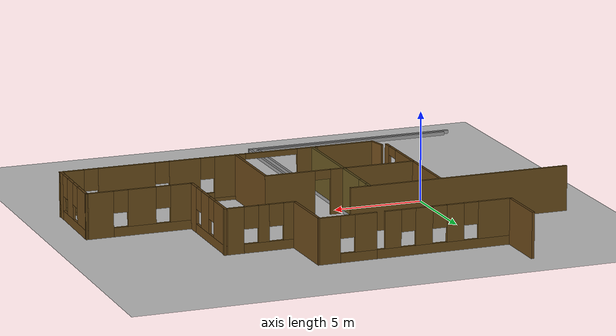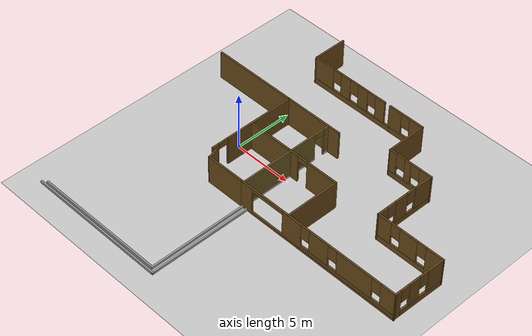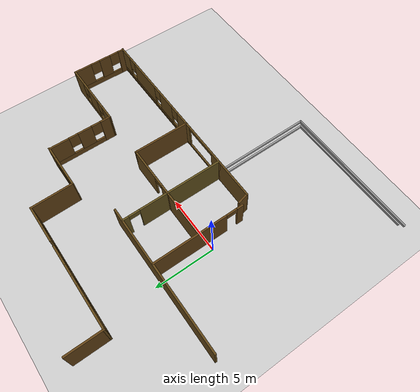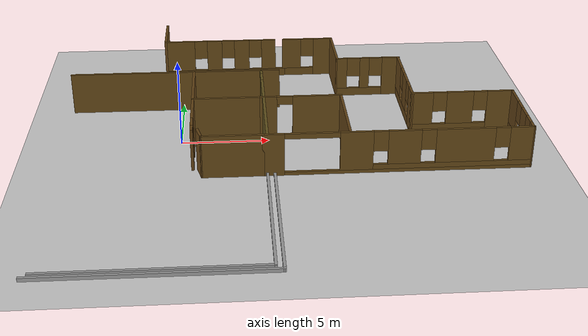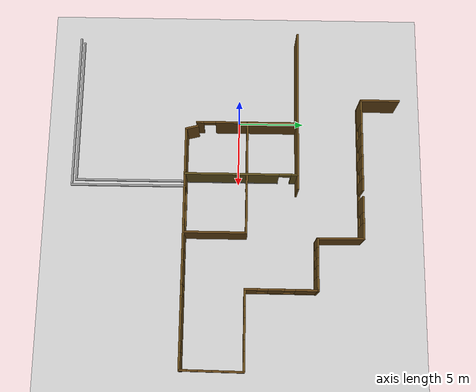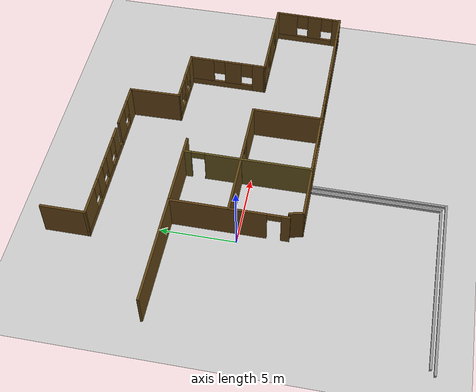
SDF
<sdf version="1.6">
 <world name="default">
  <model name="ground_plane">
   <static>1</static>
   <link name="link">
    <collision name="collision">
     <geometry><plane><normal>0 0 1</normal><size>100 100</size></plane></geometry>
     <surface>
      <contact><collide_bitmask>65535</collide_bitmask></contact>
      <friction><ode><mu>100</mu><mu2>50</mu2></ode></friction>
     </surface>
    </collision>
    <visual name="visual">
     <cast_shadows>0</cast_shadows>
     <geometry><plane><normal>0 0 1</normal><size>100 100</size></plane></geometry>
     <material>
      <script><uri>file://media/materials/scripts/gazebo.material</uri><name>Gazebo/Grey</name></script>
     </material>
    </visual>
   </link>
  </model>
  <model name="BuildMyWorld">
   <pose>-3.99019 0.78378 0 0 -0 0</pose>
   <link name="Wall_100">
    <collision name="Wall_100_Collision">
     <geometry><box><size>12.25 0.15 0.2</size></box></geometry>
     <pose>0 0 0.1 0 -0 0</pose>
    </collision>
    <visual name="Wall_100_Visual">
     <pose>0 0 0.1 0 -0 0</pose>
     <geometry><box><size>12.25 0.15 0.2</size></box></geometry>
     <material>
      <script><uri>file://media/materials/scripts/gazebo.material</uri><name>Gazebo/Grey</name></script>
      <ambient>1 1 1 1</ambient>
     </material>
     <meta><layer>0</layer></meta>
    </visual>
    <pose>3.08619 -13.6873 0 0 0 -0.002893</pose>
   </link>
   <link name="Wall_101">
    <collision name="Wall_101_Collision">
     <geometry><box><size>8.965 0.15 0.2</size></box></geometry>
     <pose>0 0 0.1 0 -0 0</pose>
    </collision>
    <visual name="Wall_101_Visual">
     <pose>0 0 0.1 0 -0 0</pose>
     <geometry><box><size>8.965 0.15 0.2</size></box></geometry>
     <material>
      <script><uri>file://media/materials/scripts/gazebo.material</uri><name>Gazebo/Grey</name></script>
      <ambient>1 1 1 1</ambient>
     </material>
     <meta><layer>0</layer></meta>
    </visual>
    <pose>9.13619 -9.29728 0 0 -0 1.5708</pose>
   </link>
   <link name="Wall_51">
    <collision name="Wall_51_Collision">
     <geometry><box><size>11.5 0.15 0.2</size></box></geometry>
     <pose>0 0 0.1 0 -0 0</pose>
    </collision>
    <visual name="Wall_51_Visual">
     <pose>0 0 0.1 0 -0 0</pose>
     <geometry><box><size>11.5 0.15 0.2</size></box></geometry>
     <material>
      <script><uri>file://media/materials/scripts/gazebo.material</uri><name>Gazebo/Grey</name></script>
      <ambient>1 1 1 1</ambient>
     </material>
     <meta><layer>0</layer></meta>
    </visual>
    <pose>3.06419 -13.3858 0 0 -0 0</pose>
   </link>
   <link name="Wall_52">
    <pose>8.73919 -4.86228 0 0 -0 1.5708</pose>
    <visual name="Wall_52_Visual_0">
     <pose>-0.730883 0 0.1 0 -0 0</pose>
     <geometry><box><size>15.7353 0.15 0.2</size></box></geometry>
     <material>
      <script><uri>file://media/materials/scripts/gazebo.material</uri><name>Gazebo/Grey</name></script>
      <ambient>1 1 1 1</ambient>
     </material>
     <meta><layer>0</layer></meta>
    </visual>
    <collision name="Wall_52_Collision_0">
     <geometry><box><size>15.7353 0.15 0.2</size></box></geometry>
     <pose>-0.730883 0 0.1 0 -0 0</pose>
    </collision>
    <visual name="Wall_52_Visual_1">
     <pose>8.31765 0 0.1 0 -0 0</pose>
     <geometry><box><size>0.561765 0.15 0.2</size></box></geometry>
     <material>
      <script><uri>file://media/materials/scripts/gazebo.material</uri><name>Gazebo/Grey</name></script>
      <ambient>1 1 1 1</ambient>
     </material>
     <meta><layer>0</layer></meta>
    </visual>
    <collision name="Wall_52_Collision_1">
     <geometry><box><size>0.561765 0.15 0.2</size></box></geometry>
     <pose>8.31765 0 0.1 0 -0 0</pose>
    </collision>
   </link>
   <link name="Wall_55">
    <collision name="Wall_55_Collision">
     <geometry><box><size>1.02553 0.15 2.5</size></box></geometry>
     <pose>0 0 1.25 0 -0 0</pose>
    </collision>
    <visual name="Wall_55_Visual">
     <pose>0 0 1.25 0 -0 0</pose>
     <geometry><box><size>1.02553 0.15 2.5</size></box></geometry>
     <material>
      <script><uri>file://media/materials/scripts/gazebo.material</uri><name>Gazebo/Grey</name></script>
      <ambient>0.384314 0.258824 0.0823529 1</ambient>
     </material>
     <meta><layer>0</layer></meta>
    </visual>
    <pose>5.11981 -4.37063 0 0 0 -1.32872</pose>
   </link>
   <link name="Wall_56">
    <collision name="Wall_56_Collision">
     <geometry><box><size>3.43004 0.15 2.5</size></box></geometry>
     <pose>0 0 1.25 0 -0 0</pose>
    </collision>
    <visual name="Wall_56_Visual">
     <pose>0 0 1.25 0 -0 0</pose>
     <geometry><box><size>3.43004 0.15 2.5</size></box></geometry>
     <material>
      <script><uri>file://media/materials/scripts/gazebo.material</uri><name>Gazebo/Grey</name></script>
      <ambient>0.384314 0.27451 0.0862745 1</ambient>
     </material>
     <meta><layer>0</layer></meta>
    </visual>
    <pose>6.86477 -4.79563 0 0 -0 0</pose>
   </link>
   <link name="Wall_58">
    <pose>15.8398 -4.79563 0 0 -0 0</pose>
    <visual name="Wall_58_Visual_0">
     <pose>-6.78269 0 1.25 0 -0 0</pose>
     <geometry><box><size>1.18462 0.15 2.5</size></box></geometry>
     <material>
      <script><uri>file://media/materials/scripts/gazebo.material</uri><name>Gazebo/Grey</name></script>
      <ambient>0.384314 0.27451 0.0862745 1</ambient>
     </material>
     <meta><layer>0</layer></meta>
    </visual>
    <collision name="Wall_58_Collision_0">
     <geometry><box><size>1.18462 0.15 2.5</size></box></geometry>
     <pose>-6.78269 0 1.25 0 -0 0</pose>
    </collision>
    <visual name="Wall_58_Visual_1">
     <pose>0.592308 0 0.1 0 -0 0</pose>
     <geometry><box><size>13.5654 0.15 0.2</size></box></geometry>
     <material>
      <script><uri>file://media/materials/scripts/gazebo.material</uri><name>Gazebo/Grey</name></script>
      <ambient>0.384314 0.27451 0.0862745 1</ambient>
     </material>
     <meta><layer>0</layer></meta>
    </visual>
    <collision name="Wall_58_Collision_1">
     <geometry><box><size>13.5654 0.15 0.2</size></box></geometry>
     <pose>0.592308 0 0.1 0 -0 0</pose>
    </collision>
    <visual name="Wall_58_Visual_2">
     <pose>-2.29175 0 1.35 0 -0 0</pose>
     <geometry><box><size>1.79726 0.15 2.3</size></box></geometry>
     <material>
      <script><uri>file://media/materials/scripts/gazebo.material</uri><name>Gazebo/Grey</name></script>
      <ambient>0.384314 0.27451 0.0862745 1</ambient>
     </material>
     <meta><layer>0</layer></meta>
    </visual>
    <collision name="Wall_58_Collision_2">
     <geometry><box><size>1.79726 0.15 2.3</size></box></geometry>
     <pose>-2.29175 0 1.35 0 -0 0</pose>
    </collision>
    <visual name="Wall_58_Visual_3">
     <pose>2.99094 0 0.35 0 -0 0</pose>
     <geometry><box><size>8.76812 0.15 0.3</size></box></geometry>
     <material>
      <script><uri>file://media/materials/scripts/gazebo.material</uri><name>Gazebo/Grey</name></script>
      <ambient>0.384314 0.27451 0.0862745 1</ambient>
     </material>
     <meta><layer>0</layer></meta>
    </visual>
    <collision name="Wall_58_Collision_3">
     <geometry><box><size>8.76812 0.15 0.3</size></box></geometry>
     <pose>2.99094 0 0.35 0 -0 0</pose>
    </collision>
    <visual name="Wall_58_Visual_4">
     <pose>0.302195 0 1.5 0 -0 0</pose>
     <geometry><box><size>1.79063 0.15 2</size></box></geometry>
     <material>
      <script><uri>file://media/materials/scripts/gazebo.material</uri><name>Gazebo/Grey</name></script>
      <ambient>0.384314 0.27451 0.0862745 1</ambient>
     </material>
     <meta><layer>0</layer></meta>
    </visual>
    <collision name="Wall_58_Collision_4">
     <geometry><box><size>1.79063 0.15 2</size></box></geometry>
     <pose>0.302195 0 1.5 0 -0 0</pose>
    </collision>
    <visual name="Wall_58_Visual_5">
     <pose>3.60987 0 1.5 0 -0 0</pose>
     <geometry><box><size>3.22473 0.15 2</size></box></geometry>
     <material>
      <script><uri>file://media/materials/scripts/gazebo.material</uri><name>Gazebo/Grey</name></script>
      <ambient>0.384314 0.27451 0.0862745 1</ambient>
     </material>
     <meta><layer>0</layer></meta>
    </visual>
    <collision name="Wall_58_Collision_5">
     <geometry><box><size>3.22473 0.15 2</size></box></geometry>
     <pose>3.60987 0 1.5 0 -0 0</pose>
    </collision>
    <visual name="Wall_58_Visual_6">
     <pose>6.69862 0 1.5 0 -0 0</pose>
     <geometry><box><size>1.35277 0.15 2</size></box></geometry>
     <material>
      <script><uri>file://media/materials/scripts/gazebo.material</uri><name>Gazebo/Grey</name></script>
      <ambient>0.384314 0.27451 0.0862745 1</ambient>
     </material>
     <meta><layer>0</layer></meta>
    </visual>
    <collision name="Wall_58_Collision_6">
     <geometry><box><size>1.35277 0.15 2</size></box></geometry>
     <pose>6.69862 0 1.5 0 -0 0</pose>
    </collision>
    <visual name="Wall_58_Visual_7">
     <pose>-0.993119 0 1.9 0 -0 0</pose>
     <geometry><box><size>0.8 0.15 1.2</size></box></geometry>
     <material>
      <script><uri>file://media/materials/scripts/gazebo.material</uri><name>Gazebo/Grey</name></script>
      <ambient>0.384314 0.27451 0.0862745 1</ambient>
     </material>
     <meta><layer>0</layer></meta>
    </visual>
    <collision name="Wall_58_Collision_7">
     <geometry><box><size>0.8 0.15 1.2</size></box></geometry>
     <pose>-0.993119 0 1.9 0 -0 0</pose>
    </collision>
    <visual name="Wall_58_Visual_8">
     <pose>1.59751 0 1.9 0 -0 0</pose>
     <geometry><box><size>0.8 0.15 1.2</size></box></geometry>
     <material>
      <script><uri>file://media/materials/scripts/gazebo.material</uri><name>Gazebo/Grey</name></script>
      <ambient>0.384314 0.27451 0.0862745 1</ambient>
     </material>
     <meta><layer>0</layer></meta>
    </visual>
    <collision name="Wall_58_Collision_8">
     <geometry><box><size>0.8 0.15 1.2</size></box></geometry>
     <pose>1.59751 0 1.9 0 -0 0</pose>
    </collision>
    <visual name="Wall_58_Visual_9">
     <pose>5.62223 0 1.9 0 -0 0</pose>
     <geometry><box><size>0.8 0.15 1.2</size></box></geometry>
     <material>
      <script><uri>file://media/materials/scripts/gazebo.material</uri><name>Gazebo/Grey</name></script>
      <ambient>0.384314 0.27451 0.0862745 1</ambient>
     </material>
     <meta><layer>0</layer></meta>
    </visual>
    <collision name="Wall_58_Collision_9">
     <geometry><box><size>0.8 0.15 1.2</size></box></geometry>
     <pose>5.62223 0 1.9 0 -0 0</pose>
    </collision>
    <visual name="Wall_58_Visual_10">
     <pose>-4.69038 0 2.35 0 -0 0</pose>
     <geometry><box><size>3 0.15 0.3</size></box></geometry>
     <material>
      <script><uri>file://media/materials/scripts/gazebo.material</uri><name>Gazebo/Grey</name></script>
      <ambient>0.384314 0.27451 0.0862745 1</ambient>
     </material>
     <meta><layer>0</layer></meta>
    </visual>
    <collision name="Wall_58_Collision_10">
     <geometry><box><size>3 0.15 0.3</size></box></geometry>
     <pose>-4.69038 0 2.35 0 -0 0</pose>
    </collision>
   </link>
   <link name="Wall_59">
    <pose>23.1398 -2.49563 0 0 -0 1.55559</pose>
    <visual name="Wall_59_Visual_0">
     <pose>-2.07621 0 1.25 0 -0 0</pose>
     <geometry><box><size>0.597589 0.15 2.5</size></box></geometry>
     <material>
      <script><uri>file://media/materials/scripts/gazebo.material</uri><name>Gazebo/Grey</name></script>
      <ambient>0.384314 0.258824 0.0823529 1</ambient>
     </material>
     <meta><layer>0</layer></meta>
    </visual>
    <collision name="Wall_59_Collision_0">
     <geometry><box><size>0.597589 0.15 2.5</size></box></geometry>
     <pose>-2.07621 0 1.25 0 -0 0</pose>
    </collision>
    <visual name="Wall_59_Visual_1">
     <pose>0.298794 0 0.25 0 -0 0</pose>
     <geometry><box><size>4.15241 0.15 0.5</size></box></geometry>
     <material>
      <script><uri>file://media/materials/scripts/gazebo.material</uri><name>Gazebo/Grey</name></script>
      <ambient>0.384314 0.258824 0.0823529 1</ambient>
     </material>
     <meta><layer>0</layer></meta>
    </visual>
    <collision name="Wall_59_Collision_1">
     <geometry><box><size>4.15241 0.15 0.5</size></box></geometry>
     <pose>0.298794 0 0.25 0 -0 0</pose>
    </collision>
    <visual name="Wall_59_Visual_2">
     <pose>-0.474898 0 1.5 0 -0 0</pose>
     <geometry><box><size>1.00503 0.15 2</size></box></geometry>
     <material>
      <script><uri>file://media/materials/scripts/gazebo.material</uri><name>Gazebo/Grey</name></script>
      <ambient>0.384314 0.258824 0.0823529 1</ambient>
     </material>
     <meta><layer>0</layer></meta>
    </visual>
    <collision name="Wall_59_Collision_2">
     <geometry><box><size>1.00503 0.15 2</size></box></geometry>
     <pose>-0.474898 0 1.5 0 -0 0</pose>
    </collision>
    <visual name="Wall_59_Visual_3">
     <pose>1.60131 0 1.5 0 -0 0</pose>
     <geometry><box><size>1.54739 0.15 2</size></box></geometry>
     <material>
      <script><uri>file://media/materials/scripts/gazebo.material</uri><name>Gazebo/Grey</name></script>
      <ambient>0.384314 0.258824 0.0823529 1</ambient>
     </material>
     <meta><layer>0</layer></meta>
    </visual>
    <collision name="Wall_59_Collision_3">
     <geometry><box><size>1.54739 0.15 2</size></box></geometry>
     <pose>1.60131 0 1.5 0 -0 0</pose>
    </collision>
    <visual name="Wall_59_Visual_4">
     <pose>-1.37741 0 1.9 0 -0 0</pose>
     <geometry><box><size>0.8 0.15 1.2</size></box></geometry>
     <material>
      <script><uri>file://media/materials/scripts/gazebo.material</uri><name>Gazebo/Grey</name></script>
      <ambient>0.384314 0.258824 0.0823529 1</ambient>
     </material>
     <meta><layer>0</layer></meta>
    </visual>
    <collision name="Wall_59_Collision_4">
     <geometry><box><size>0.8 0.15 1.2</size></box></geometry>
     <pose>-1.37741 0 1.9 0 -0 0</pose>
    </collision>
    <visual name="Wall_59_Visual_5">
     <pose>0.427615 0 1.9 0 -0 0</pose>
     <geometry><box><size>0.8 0.15 1.2</size></box></geometry>
     <material>
      <script><uri>file://media/materials/scripts/gazebo.material</uri><name>Gazebo/Grey</name></script>
      <ambient>0.384314 0.258824 0.0823529 1</ambient>
     </material>
     <meta><layer>0</layer></meta>
    </visual>
    <collision name="Wall_59_Collision_5">
     <geometry><box><size>0.8 0.15 1.2</size></box></geometry>
     <pose>0.427615 0 1.9 0 -0 0</pose>
    </collision>
   </link>
   <link name="Wall_60">
    <pose>20.2498 -0.195633 0 0 -0 3.14159</pose>
    <visual name="Wall_60_Visual_0">
     <pose>-2.23109 0 1.25 0 -0 0</pose>
     <geometry><box><size>1.53781 0.15 2.5</size></box></geometry>
     <material>
      <script><uri>file://media/materials/scripts/gazebo.material</uri><name>Gazebo/Grey</name></script>
      <ambient>0.384314 0.27451 0.0862745 1</ambient>
     </material>
     <meta><layer>0</layer></meta>
    </visual>
    <collision name="Wall_60_Collision_0">
     <geometry><box><size>1.53781 0.15 2.5</size></box></geometry>
     <pose>-2.23109 0 1.25 0 -0 0</pose>
    </collision>
    <visual name="Wall_60_Visual_1">
     <pose>0.768905 0 0.25 0 -0 0</pose>
     <geometry><box><size>4.46219 0.15 0.5</size></box></geometry>
     <material>
      <script><uri>file://media/materials/scripts/gazebo.material</uri><name>Gazebo/Grey</name></script>
      <ambient>0.384314 0.27451 0.0862745 1</ambient>
     </material>
     <meta><layer>0</layer></meta>
    </visual>
    <collision name="Wall_60_Collision_1">
     <geometry><box><size>4.46219 0.15 0.5</size></box></geometry>
     <pose>0.768905 0 0.25 0 -0 0</pose>
    </collision>
    <visual name="Wall_60_Visual_2">
     <pose>0.117472 0 1.5 0 -0 0</pose>
     <geometry><box><size>1.55932 0.15 2</size></box></geometry>
     <material>
      <script><uri>file://media/materials/scripts/gazebo.material</uri><name>Gazebo/Grey</name></script>
      <ambient>0.384314 0.27451 0.0862745 1</ambient>
     </material>
     <meta><layer>0</layer></meta>
    </visual>
    <collision name="Wall_60_Collision_2">
     <geometry><box><size>1.55932 0.15 2</size></box></geometry>
     <pose>0.117472 0 1.5 0 -0 0</pose>
    </collision>
    <visual name="Wall_60_Visual_3">
     <pose>2.34857 0 1.5 0 -0 0</pose>
     <geometry><box><size>1.30287 0.15 2</size></box></geometry>
     <material>
      <script><uri>file://media/materials/scripts/gazebo.material</uri><name>Gazebo/Grey</name></script>
      <ambient>0.384314 0.27451 0.0862745 1</ambient>
     </material>
     <meta><layer>0</layer></meta>
    </visual>
    <collision name="Wall_60_Collision_3">
     <geometry><box><size>1.30287 0.15 2</size></box></geometry>
     <pose>2.34857 0 1.5 0 -0 0</pose>
    </collision>
    <visual name="Wall_60_Visual_4">
     <pose>-1.06219 0 1.9 0 -0 0</pose>
     <geometry><box><size>0.8 0.15 1.2</size></box></geometry>
     <material>
      <script><uri>file://media/materials/scripts/gazebo.material</uri><name>Gazebo/Grey</name></script>
      <ambient>0.384314 0.27451 0.0862745 1</ambient>
     </material>
     <meta><layer>0</layer></meta>
    </visual>
    <collision name="Wall_60_Collision_4">
     <geometry><box><size>0.8 0.15 1.2</size></box></geometry>
     <pose>-1.06219 0 1.9 0 -0 0</pose>
    </collision>
    <visual name="Wall_60_Visual_5">
     <pose>1.29713 0 1.9 0 -0 0</pose>
     <geometry><box><size>0.8 0.15 1.2</size></box></geometry>
     <material>
      <script><uri>file://media/materials/scripts/gazebo.material</uri><name>Gazebo/Grey</name></script>
      <ambient>0.384314 0.27451 0.0862745 1</ambient>
     </material>
     <meta><layer>0</layer></meta>
    </visual>
    <collision name="Wall_60_Collision_5">
     <geometry><box><size>0.8 0.15 1.2</size></box></geometry>
     <pose>1.29713 0 1.9 0 -0 0</pose>
    </collision>
   </link>
   <link name="Wall_61">
    <pose>17.334 2.45647 0 0 -0 1.56732</pose>
    <visual name="Wall_61_Visual_0">
     <pose>-2.25334 0 1.25 0 -0 0</pose>
     <geometry><box><size>0.94756 0.15 2.5</size></box></geometry>
     <material>
      <script><uri>file://media/materials/scripts/gazebo.material</uri><name>Gazebo/Grey</name></script>
      <ambient>0.384314 0.258824 0.0823529 1</ambient>
     </material>
     <meta><layer>0</layer></meta>
    </visual>
    <collision name="Wall_61_Collision_0">
     <geometry><box><size>0.94756 0.15 2.5</size></box></geometry>
     <pose>-2.25334 0 1.25 0 -0 0</pose>
    </collision>
    <visual name="Wall_61_Visual_1">
     <pose>0.47378 0 0.25 0 -0 0</pose>
     <geometry><box><size>4.50669 0.15 0.5</size></box></geometry>
     <material>
      <script><uri>file://media/materials/scripts/gazebo.material</uri><name>Gazebo/Grey</name></script>
      <ambient>0.384314 0.258824 0.0823529 1</ambient>
     </material>
     <meta><layer>0</layer></meta>
    </visual>
    <collision name="Wall_61_Collision_1">
     <geometry><box><size>4.50669 0.15 0.5</size></box></geometry>
     <pose>0.47378 0 0.25 0 -0 0</pose>
    </collision>
    <visual name="Wall_61_Visual_2">
     <pose>-0.385033 0 1.5 0 -0 0</pose>
     <geometry><box><size>1.18906 0.15 2</size></box></geometry>
     <material>
      <script><uri>file://media/materials/scripts/gazebo.material</uri><name>Gazebo/Grey</name></script>
      <ambient>0.384314 0.258824 0.0823529 1</ambient>
     </material>
     <meta><layer>0</layer></meta>
    </visual>
    <collision name="Wall_61_Collision_2">
     <geometry><box><size>1.18906 0.15 2</size></box></geometry>
     <pose>-0.385033 0 1.5 0 -0 0</pose>
    </collision>
    <visual name="Wall_61_Visual_3">
     <pose>1.86831 0 1.5 0 -0 0</pose>
     <geometry><box><size>1.71763 0.15 2</size></box></geometry>
     <material>
      <script><uri>file://media/materials/scripts/gazebo.material</uri><name>Gazebo/Grey</name></script>
      <ambient>0.384314 0.258824 0.0823529 1</ambient>
     </material>
     <meta><layer>0</layer></meta>
    </visual>
    <collision name="Wall_61_Collision_3">
     <geometry><box><size>1.71763 0.15 2</size></box></geometry>
     <pose>1.86831 0 1.5 0 -0 0</pose>
    </collision>
    <visual name="Wall_61_Visual_4">
     <pose>-1.37956 0 1.9 0 -0 0</pose>
     <geometry><box><size>0.8 0.15 1.2</size></box></geometry>
     <material>
      <script><uri>file://media/materials/scripts/gazebo.material</uri><name>Gazebo/Grey</name></script>
      <ambient>0.384314 0.258824 0.0823529 1</ambient>
     </material>
     <meta><layer>0</layer></meta>
    </visual>
    <collision name="Wall_61_Collision_4">
     <geometry><box><size>0.8 0.15 1.2</size></box></geometry>
     <pose>-1.37956 0 1.9 0 -0 0</pose>
    </collision>
    <visual name="Wall_61_Visual_5">
     <pose>0.609496 0 1.9 0 -0 0</pose>
     <geometry><box><size>0.8 0.15 1.2</size></box></geometry>
     <material>
      <script><uri>file://media/materials/scripts/gazebo.material</uri><name>Gazebo/Grey</name></script>
      <ambient>0.384314 0.258824 0.0823529 1</ambient>
     </material>
     <meta><layer>0</layer></meta>
    </visual>
    <collision name="Wall_61_Collision_5">
     <geometry><box><size>0.8 0.15 1.2</size></box></geometry>
     <pose>0.609496 0 1.9 0 -0 0</pose>
    </collision>
   </link>
   <link name="Wall_62">
    <pose>15.4532 5.10858 0 0 -0 3.14159</pose>
    <visual name="Wall_62_Visual_0">
     <pose>-1.44622 0 1.25 0 -0 0</pose>
     <geometry><box><size>1.10755 0.15 2.5</size></box></geometry>
     <material>
      <script><uri>file://media/materials/scripts/gazebo.material</uri><name>Gazebo/Grey</name></script>
      <ambient>0.384314 0.27451 0.0862745 1</ambient>
     </material>
     <meta><layer>0</layer></meta>
    </visual>
    <collision name="Wall_62_Collision_0">
     <geometry><box><size>1.10755 0.15 2.5</size></box></geometry>
     <pose>-1.44622 0 1.25 0 -0 0</pose>
    </collision>
    <visual name="Wall_62_Visual_1">
     <pose>0.553776 0 0.25 0 -0 0</pose>
     <geometry><box><size>2.89245 0.15 0.5</size></box></geometry>
     <material>
      <script><uri>file://media/materials/scripts/gazebo.material</uri><name>Gazebo/Grey</name></script>
      <ambient>0.384314 0.27451 0.0862745 1</ambient>
     </material>
     <meta><layer>0</layer></meta>
    </visual>
    <collision name="Wall_62_Collision_1">
     <geometry><box><size>2.89245 0.15 0.5</size></box></geometry>
     <pose>0.553776 0 0.25 0 -0 0</pose>
    </collision>
    <visual name="Wall_62_Visual_2">
     <pose>0.201469 0 1.5 0 -0 0</pose>
     <geometry><box><size>0.587836 0.15 2</size></box></geometry>
     <material>
      <script><uri>file://media/materials/scripts/gazebo.material</uri><name>Gazebo/Grey</name></script>
      <ambient>0.384314 0.27451 0.0862745 1</ambient>
     </material>
     <meta><layer>0</layer></meta>
    </visual>
    <collision name="Wall_62_Collision_2">
     <geometry><box><size>0.587836 0.15 2</size></box></geometry>
     <pose>0.201469 0 1.5 0 -0 0</pose>
    </collision>
    <visual name="Wall_62_Visual_3">
     <pose>1.64769 0 1.5 0 -0 0</pose>
     <geometry><box><size>0.704612 0.15 2</size></box></geometry>
     <material>
      <script><uri>file://media/materials/scripts/gazebo.material</uri><name>Gazebo/Grey</name></script>
      <ambient>0.384314 0.27451 0.0862745 1</ambient>
     </material>
     <meta><layer>0</layer></meta>
    </visual>
    <collision name="Wall_62_Collision_3">
     <geometry><box><size>0.704612 0.15 2</size></box></geometry>
     <pose>1.64769 0 1.5 0 -0 0</pose>
    </collision>
    <visual name="Wall_62_Visual_4">
     <pose>-0.492449 0 1.9 0 -0 0</pose>
     <geometry><box><size>0.8 0.15 1.2</size></box></geometry>
     <material>
      <script><uri>file://media/materials/scripts/gazebo.material</uri><name>Gazebo/Grey</name></script>
      <ambient>0.384314 0.27451 0.0862745 1</ambient>
     </material>
     <meta><layer>0</layer></meta>
    </visual>
    <collision name="Wall_62_Collision_4">
     <geometry><box><size>0.8 0.15 1.2</size></box></geometry>
     <pose>-0.492449 0 1.9 0 -0 0</pose>
    </collision>
    <visual name="Wall_62_Visual_5">
     <pose>0.895388 0 1.9 0 -0 0</pose>
     <geometry><box><size>0.8 0.15 1.2</size></box></geometry>
     <material>
      <script><uri>file://media/materials/scripts/gazebo.material</uri><name>Gazebo/Grey</name></script>
      <ambient>0.384314 0.27451 0.0862745 1</ambient>
     </material>
     <meta><layer>0</layer></meta>
    </visual>
    <collision name="Wall_62_Collision_5">
     <geometry><box><size>0.8 0.15 1.2</size></box></geometry>
     <pose>0.895388 0 1.9 0 -0 0</pose>
    </collision>
   </link>
   <link name="Wall_63">
    <collision name="Wall_63_Collision">
     <geometry><box><size>3.54621 0.15 2.5</size></box></geometry>
     <pose>0 0 1.25 0 -0 0</pose>
    </collision>
    <visual name="Wall_63_Visual">
     <pose>0 0 1.25 0 -0 0</pose>
     <geometry><box><size>3.54621 0.15 2.5</size></box></geometry>
     <material>
      <script><uri>file://media/materials/scripts/gazebo.material</uri><name>Gazebo/Grey</name></script>
      <ambient>0.384314 0.258824 0.0823529 1</ambient>
     </material>
     <meta><layer>0</layer></meta>
    </visual>
    <pose>13.5015 6.80647 0 0 -0 1.58653</pose>
   </link>
   <link name="Wall_64">
    <pose>11.9247 8.50437 0 0 -0 3.14159</pose>
    <visual name="Wall_64_Visual_0">
     <pose>-1.01058 0 1.25 0 -0 0</pose>
     <geometry><box><size>1.22884 0.15 2.5</size></box></geometry>
     <material>
      <script><uri>file://media/materials/scripts/gazebo.material</uri><name>Gazebo/Grey</name></script>
      <ambient>0.384314 0.27451 0.0862745 1</ambient>
     </material>
     <meta><layer>0</layer></meta>
    </visual>
    <collision name="Wall_64_Collision_0">
     <geometry><box><size>1.22884 0.15 2.5</size></box></geometry>
     <pose>-1.01058 0 1.25 0 -0 0</pose>
    </collision>
    <visual name="Wall_64_Visual_1">
     <pose>0.614419 0 0.25 0 -0 0</pose>
     <geometry><box><size>2.02116 0.15 0.5</size></box></geometry>
     <material>
      <script><uri>file://media/materials/scripts/gazebo.material</uri><name>Gazebo/Grey</name></script>
      <ambient>0.384314 0.27451 0.0862745 1</ambient>
     </material>
     <meta><layer>0</layer></meta>
    </visual>
    <collision name="Wall_64_Collision_1">
     <geometry><box><size>2.02116 0.15 0.5</size></box></geometry>
     <pose>0.614419 0 0.25 0 -0 0</pose>
    </collision>
    <visual name="Wall_64_Visual_2">
     <pose>1.01442 0 1.5 0 -0 0</pose>
     <geometry><box><size>1.22116 0.15 2</size></box></geometry>
     <material>
      <script><uri>file://media/materials/scripts/gazebo.material</uri><name>Gazebo/Grey</name></script>
      <ambient>0.384314 0.27451 0.0862745 1</ambient>
     </material>
     <meta><layer>0</layer></meta>
    </visual>
    <collision name="Wall_64_Collision_2">
     <geometry><box><size>1.22116 0.15 2</size></box></geometry>
     <pose>1.01442 0 1.5 0 -0 0</pose>
    </collision>
    <visual name="Wall_64_Visual_3">
     <pose>0.003837 0 1.9 0 -0 0</pose>
     <geometry><box><size>0.8 0.15 1.2</size></box></geometry>
     <material>
      <script><uri>file://media/materials/scripts/gazebo.material</uri><name>Gazebo/Grey</name></script>
      <ambient>0.384314 0.27451 0.0862745 1</ambient>
     </material>
     <meta><layer>0</layer></meta>
    </visual>
    <collision name="Wall_64_Collision_3">
     <geometry><box><size>0.8 0.15 1.2</size></box></geometry>
     <pose>0.003837 0 1.9 0 -0 0</pose>
    </collision>
   </link>
   <link name="Wall_65">
    <pose>6.57475 8.50437 0 0 -0 3.14159</pose>
    <visual name="Wall_65_Visual_0">
     <pose>0 0 0.25 0 -0 0</pose>
     <geometry><box><size>7.75 0.15 0.5</size></box></geometry>
     <material>
      <script><uri>file://media/materials/scripts/gazebo.material</uri><name>Gazebo/Grey</name></script>
      <ambient>0.384314 0.27451 0.0862745 1</ambient>
     </material>
     <meta><layer>0</layer></meta>
    </visual>
    <collision name="Wall_65_Collision_0">
     <geometry><box><size>7.75 0.15 0.5</size></box></geometry>
     <pose>0 0 0.25 0 -0 0</pose>
    </collision>
    <visual name="Wall_65_Visual_1">
     <pose>-2.82493 0 1.5 0 -0 0</pose>
     <geometry><box><size>0.911665 0.15 2</size></box></geometry>
     <material>
      <script><uri>file://media/materials/scripts/gazebo.material</uri><name>Gazebo/Grey</name></script>
      <ambient>0.384314 0.27451 0.0862745 1</ambient>
     </material>
     <meta><layer>0</layer></meta>
    </visual>
    <collision name="Wall_65_Collision_1">
     <geometry><box><size>0.911665 0.15 2</size></box></geometry>
     <pose>-2.82493 0 1.5 0 -0 0</pose>
    </collision>
    <visual name="Wall_65_Visual_2">
     <pose>-1.09013 0 1.5 0 -0 0</pose>
     <geometry><box><size>0.957926 0.15 2</size></box></geometry>
     <material>
      <script><uri>file://media/materials/scripts/gazebo.material</uri><name>Gazebo/Grey</name></script>
      <ambient>0.384314 0.27451 0.0862745 1</ambient>
     </material>
     <meta><layer>0</layer></meta>
    </visual>
    <collision name="Wall_65_Collision_2">
     <geometry><box><size>0.957926 0.15 2</size></box></geometry>
     <pose>-1.09013 0 1.5 0 -0 0</pose>
    </collision>
    <visual name="Wall_65_Visual_3">
     <pose>0.667795 0 1.5 0 -0 0</pose>
     <geometry><box><size>0.957926 0.15 2</size></box></geometry>
     <material>
      <script><uri>file://media/materials/scripts/gazebo.material</uri><name>Gazebo/Grey</name></script>
      <ambient>0.384314 0.27451 0.0862745 1</ambient>
     </material>
     <meta><layer>0</layer></meta>
    </visual>
    <collision name="Wall_65_Collision_3">
     <geometry><box><size>0.957926 0.15 2</size></box></geometry>
     <pose>0.667795 0 1.5 0 -0 0</pose>
    </collision>
    <visual name="Wall_65_Visual_4">
     <pose>2.91088 0 1.5 0 -0 0</pose>
     <geometry><box><size>1.92824 0.15 2</size></box></geometry>
     <material>
      <script><uri>file://media/materials/scripts/gazebo.material</uri><name>Gazebo/Grey</name></script>
      <ambient>0.384314 0.27451 0.0862745 1</ambient>
     </material>
     <meta><layer>0</layer></meta>
    </visual>
    <collision name="Wall_65_Collision_4">
     <geometry><box><size>1.92824 0.15 2</size></box></geometry>
     <pose>2.91088 0 1.5 0 -0 0</pose>
    </collision>
    <visual name="Wall_65_Visual_5">
     <pose>-1.96909 0 1.9 0 -0 0</pose>
     <geometry><box><size>0.8 0.15 1.2</size></box></geometry>
     <material>
      <script><uri>file://media/materials/scripts/gazebo.material</uri><name>Gazebo/Grey</name></script>
      <ambient>0.384314 0.27451 0.0862745 1</ambient>
     </material>
     <meta><layer>0</layer></meta>
    </visual>
    <collision name="Wall_65_Collision_5">
     <geometry><box><size>0.8 0.15 1.2</size></box></geometry>
     <pose>-1.96909 0 1.9 0 -0 0</pose>
    </collision>
    <visual name="Wall_65_Visual_6">
     <pose>-0.211168 0 1.9 0 -0 0</pose>
     <geometry><box><size>0.8 0.15 1.2</size></box></geometry>
     <material>
      <script><uri>file://media/materials/scripts/gazebo.material</uri><name>Gazebo/Grey</name></script>
      <ambient>0.384314 0.27451 0.0862745 1</ambient>
     </material>
     <meta><layer>0</layer></meta>
    </visual>
    <collision name="Wall_65_Collision_6">
     <geometry><box><size>0.8 0.15 1.2</size></box></geometry>
     <pose>-0.211168 0 1.9 0 -0 0</pose>
    </collision>
    <visual name="Wall_65_Visual_7">
     <pose>1.54676 0 1.9 0 -0 0</pose>
     <geometry><box><size>0.8 0.15 1.2</size></box></geometry>
     <material>
      <script><uri>file://media/materials/scripts/gazebo.material</uri><name>Gazebo/Grey</name></script>
      <ambient>0.384314 0.27451 0.0862745 1</ambient>
     </material>
     <meta><layer>0</layer></meta>
    </visual>
    <collision name="Wall_65_Collision_7">
     <geometry><box><size>0.8 0.15 1.2</size></box></geometry>
     <pose>1.54676 0 1.9 0 -0 0</pose>
    </collision>
   </link>
   <link name="Wall_66">
    <collision name="Wall_66_Collision">
     <geometry><box><size>3 0.15 2.5</size></box></geometry>
     <pose>0 0 1.25 0 -0 0</pose>
    </collision>
    <visual name="Wall_66_Visual">
     <pose>0 0 1.25 0 -0 0</pose>
     <geometry><box><size>3 0.15 2.5</size></box></geometry>
     <material>
      <script><uri>file://media/materials/scripts/gazebo.material</uri><name>Gazebo/Grey</name></script>
      <ambient>0.384314 0.258824 0.0823529 1</ambient>
     </material>
     <meta><layer>0</layer></meta>
    </visual>
    <pose>2.77475 9.92937 0 0 -0 1.5708</pose>
   </link>
   <link name="Wall_83">
    <collision name="Wall_83_Collision">
     <geometry><box><size>12.5 0.15 2.5</size></box></geometry>
     <pose>0 0 1.25 0 -0 0</pose>
    </collision>
    <visual name="Wall_83_Visual">
     <pose>0 0 1.25 0 -0 0</pose>
     <geometry><box><size>12.5 0.15 2.5</size></box></geometry>
     <material>
      <script><uri>file://media/materials/scripts/gazebo.material</uri><name>Gazebo/Grey</name></script>
      <ambient>0.384314 0.27451 0.0862745 1</ambient>
     </material>
     <meta><layer>0</layer></meta>
    </visual>
    <pose>3.59865 3.66204 0 0 -0 0</pose>
   </link>
   <link name="Wall_85">
    <pose>4.6936 -0.171061 0 0 -0 1.5708</pose>
    <visual name="Wall_85_Visual_0">
     <pose>-3.58897 0 1.25 0 -0 0</pose>
     <geometry><box><size>0.57206 0.15 2.5</size></box></geometry>
     <material>
      <script><uri>file://media/materials/scripts/gazebo.material</uri><name>Gazebo/Grey</name></script>
      <ambient>0.384314 0.258824 0.0823529 1</ambient>
     </material>
     <meta><layer>0</layer></meta>
    </visual>
    <collision name="Wall_85_Collision_0">
     <geometry><box><size>0.57206 0.15 2.5</size></box></geometry>
     <pose>-3.58897 0 1.25 0 -0 0</pose>
    </collision>
    <visual name="Wall_85_Visual_1">
     <pose>0.73603 0 1.25 0 -0 0</pose>
     <geometry><box><size>6.27794 0.15 2.5</size></box></geometry>
     <material>
      <script><uri>file://media/materials/scripts/gazebo.material</uri><name>Gazebo/Grey</name></script>
      <ambient>0.384314 0.258824 0.0823529 1</ambient>
     </material>
     <meta><layer>0</layer></meta>
    </visual>
    <collision name="Wall_85_Collision_1">
     <geometry><box><size>6.27794 0.15 2.5</size></box></geometry>
     <pose>0.73603 0 1.25 0 -0 0</pose>
    </collision>
    <visual name="Wall_85_Visual_2">
     <pose>-2.85294 0 2.25 0 -0 0</pose>
     <geometry><box><size>0.9 0.15 0.5</size></box></geometry>
     <material>
      <script><uri>file://media/materials/scripts/gazebo.material</uri><name>Gazebo/Grey</name></script>
      <ambient>0.384314 0.258824 0.0823529 1</ambient>
     </material>
     <meta><layer>0</layer></meta>
    </visual>
    <collision name="Wall_85_Collision_2">
     <geometry><box><size>0.9 0.15 0.5</size></box></geometry>
     <pose>-2.85294 0 2.25 0 -0 0</pose>
    </collision>
   </link>
   <link name="Wall_90">
    <collision name="Wall_90_Collision">
     <geometry><box><size>4 0.15 2.5</size></box></geometry>
     <pose>0 0 1.25 0 -0 0</pose>
    </collision>
    <visual name="Wall_90_Visual">
     <pose>0 0 1.25 0 -0 0</pose>
     <geometry><box><size>4 0.15 2.5</size></box></geometry>
     <material>
      <script><uri>file://media/materials/scripts/gazebo.material</uri><name>Gazebo/Grey</name></script>
      <ambient>0.384314 0.27451 0.0862745 1</ambient>
     </material>
     <meta><layer>0</layer></meta>
    </visual>
    <pose>6.65746 -0.15118 0 0 -0 0</pose>
   </link>
   <link name="Wall_92">
    <pose>10.8825 -0.15118 0 0 -0 0</pose>
    <visual name="Wall_92_Visual_0">
     <pose>-1.88068 0 1.25 0 -0 0</pose>
     <geometry><box><size>0.988639 0.15 2.5</size></box></geometry>
     <material>
      <script><uri>file://media/materials/scripts/gazebo.material</uri><name>Gazebo/Grey</name></script>
      <ambient>0.384314 0.27451 0.0862745 1</ambient>
     </material>
     <meta><layer>0</layer></meta>
    </visual>
    <collision name="Wall_92_Collision_0">
     <geometry><box><size>0.988639 0.15 2.5</size></box></geometry>
     <pose>-1.88068 0 1.25 0 -0 0</pose>
    </collision>
    <visual name="Wall_92_Visual_1">
     <pose>0.94432 0 1.25 0 -0 0</pose>
     <geometry><box><size>2.86136 0.15 2.5</size></box></geometry>
     <material>
      <script><uri>file://media/materials/scripts/gazebo.material</uri><name>Gazebo/Grey</name></script>
      <ambient>0.384314 0.27451 0.0862745 1</ambient>
     </material>
     <meta><layer>0</layer></meta>
    </visual>
    <collision name="Wall_92_Collision_1">
     <geometry><box><size>2.86136 0.15 2.5</size></box></geometry>
     <pose>0.94432 0 1.25 0 -0 0</pose>
    </collision>
    <visual name="Wall_92_Visual_2">
     <pose>-0.936361 0 2.25 0 -0 0</pose>
     <geometry><box><size>0.9 0.15 0.5</size></box></geometry>
     <material>
      <script><uri>file://media/materials/scripts/gazebo.material</uri><name>Gazebo/Grey</name></script>
      <ambient>0.384314 0.27451 0.0862745 1</ambient>
     </material>
     <meta><layer>0</layer></meta>
    </visual>
    <collision name="Wall_92_Collision_2">
     <geometry><box><size>0.9 0.15 0.5</size></box></geometry>
     <pose>-0.936361 0 2.25 0 -0 0</pose>
    </collision>
   </link>
   <link name="Wall_93">
    <collision name="Wall_93_Collision">
     <geometry><box><size>4.75 0.15 2.5</size></box></geometry>
     <pose>0 0 1.25 0 -0 0</pose>
    </collision>
    <visual name="Wall_93_Visual">
     <pose>0 0 1.25 0 -0 0</pose>
     <geometry><box><size>4.75 0.15 2.5</size></box></geometry>
     <material>
      <script><uri>file://media/materials/scripts/gazebo.material</uri><name>Gazebo/Grey</name></script>
      <ambient>0.384314 0.258824 0.0823529 1</ambient>
     </material>
     <meta><layer>0</layer></meta>
    </visual>
    <pose>13.1825 -2.45118 0 0 0 -1.5708</pose>
   </link>
   <static>1</static>
  </model>
  <model name="AdditionalWall">
   <pose>4.74847 0.205813 0 0 -0 0</pose>
   <link name="Wall_115">
    <pose>0 0 0 0 0 -1.5708</pose>
    <visual name="Wall_115_Visual_0">
     <pose>-3.98651 0 1.25 0 -0 0</pose>
     <geometry><box><size>0.526987 0.15 2.5</size></box></geometry>
     <material>
      <script><uri>file://media/materials/scripts/gazebo.material</uri><name>Gazebo/Grey</name></script>
      <ambient>0.384314 0.317647 0.113725 1</ambient>
     </material>
     <meta><layer>0</layer></meta>
    </visual>
    <collision name="Wall_115_Collision_0">
     <geometry><box><size>0.526987 0.15 2.5</size></box></geometry>
     <pose>-3.98651 0 1.25 0 -0 0</pose>
    </collision>
    <visual name="Wall_115_Visual_1">
     <pose>0.713493 0 1.25 0 -0 0</pose>
     <geometry><box><size>7.07301 0.15 2.5</size></box></geometry>
     <material>
      <script><uri>file://media/materials/scripts/gazebo.material</uri><name>Gazebo/Grey</name></script>
      <ambient>0.384314 0.317647 0.113725 1</ambient>
     </material>
     <meta><layer>0</layer></meta>
    </visual>
    <collision name="Wall_115_Collision_1">
     <geometry><box><size>7.07301 0.15 2.5</size></box></geometry>
     <pose>0.713493 0 1.25 0 -0 0</pose>
    </collision>
    <visual name="Wall_115_Visual_2">
     <pose>-3.27301 0 2.25 0 -0 0</pose>
     <geometry><box><size>0.9 0.15 0.5</size></box></geometry>
     <material>
      <script><uri>file://media/materials/scripts/gazebo.material</uri><name>Gazebo/Grey</name></script>
      <ambient>0.384314 0.317647 0.113725 1</ambient>
     </material>
     <meta><layer>0</layer></meta>
    </visual>
    <collision name="Wall_115_Collision_2">
     <geometry><box><size>0.9 0.15 0.5</size></box></geometry>
     <pose>-3.27301 0 2.25 0 -0 0</pose>
    </collision>
   </link>
   <static>1</static>
  </model>
 </world>
</sdf>
